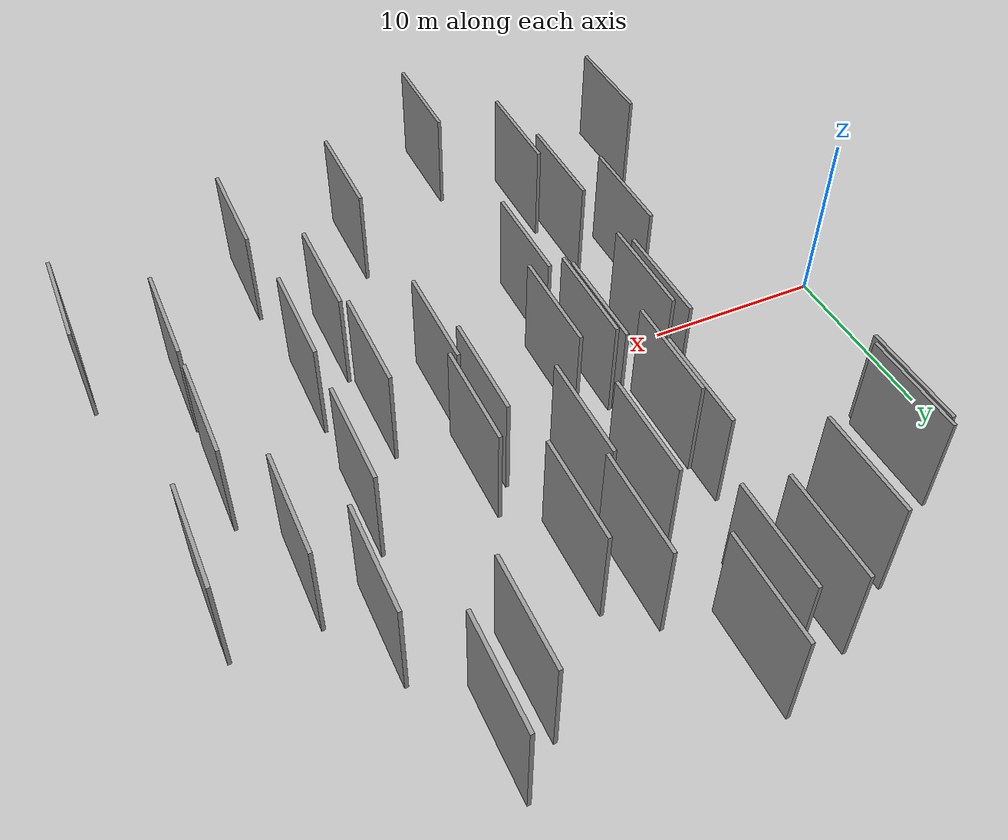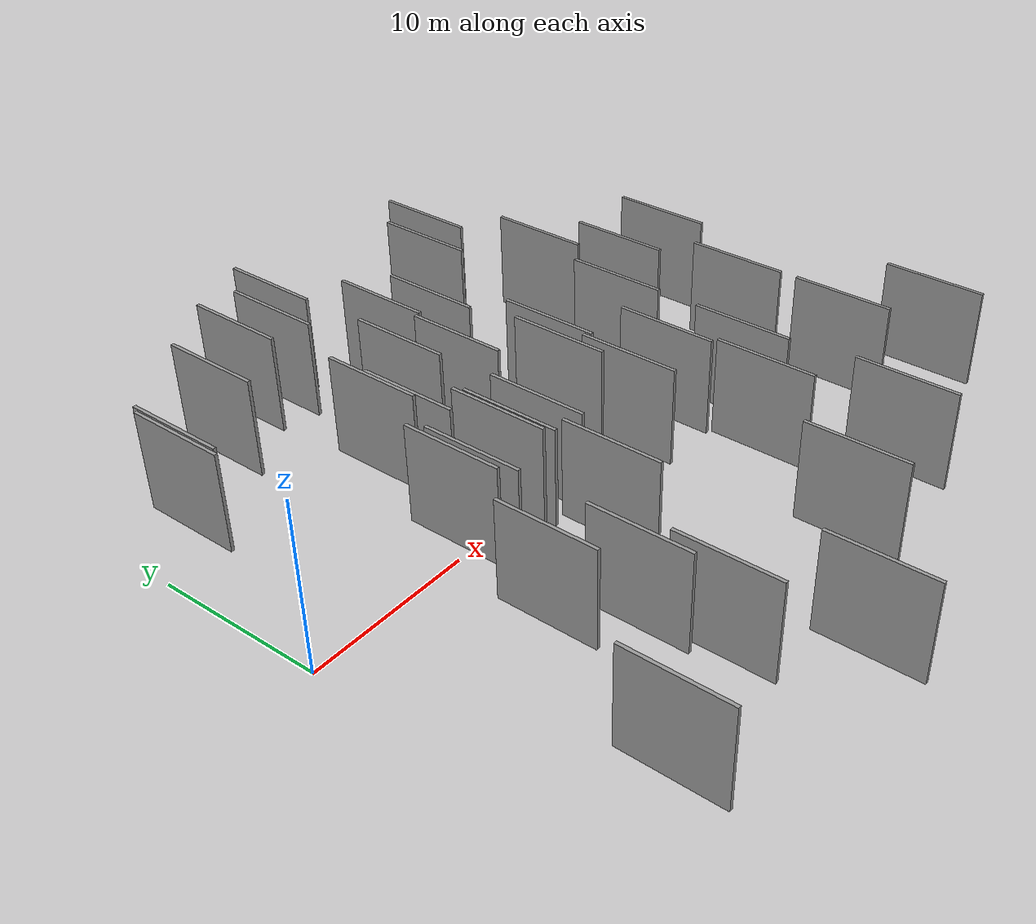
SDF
<sdf version="1.6">
 <world name="default">
  <scene>
   <sky><clouds><speed>12</speed></clouds></sky>
   <ambient>0.4 0.4 0.4 1</ambient>
   <background>0.7 0.7 0.7 1</background>
   <shadows>1</shadows>
  </scene>
  <gravity>0 0 -9.8066</gravity>
  <magnetic_field>6e-06 2.3e-05 -4.2e-05</magnetic_field>
  <physics default="0" name="default_physics" type="ode">
   <ode>
    <solver>
     <type>quick</type>
     <iters>10</iters>
     <sor>1.0</sor>
     <use_dynamic_moi_rescaling>0</use_dynamic_moi_rescaling>
    </solver>
    <constraints>
     <cfm>0</cfm>
     <erp>0.2</erp>
     <contact_max_correcting_vel>100</contact_max_correcting_vel>
     <contact_surface_layer>0.001</contact_surface_layer>
    </constraints>
   </ode>
   <max_step_size>0.004</max_step_size>
   <real_time_factor>1</real_time_factor>
   <real_time_update_rate>250</real_time_update_rate>
  </physics>
  <light name="sun" type="directional">
   <pose>0 0 10 0 0 0</pose>
   <diffuse>0.8 0.8 0.8 1</diffuse>
   <specular>0.2 0.2 0.2 1</specular>
   <attenuation>
    <range>1000</range>
    <constant>0.9</constant>
    <linear>0.01</linear>
    <quadratic>0.001</quadratic>
   </attenuation>
   <direction>-0.5 0.1 -0.9</direction>
  </light>
  <model name="grey_wall_1">
   <static>1</static>
   <pose>12.2431 -14.0350 0.0 0.000000 0.000000 1.570796</pose>
   <link name="link">
    <pose>0 0 3.00 0 0 0</pose>
    <collision name="collision"><geometry><box><size>6.00 0.2 6.00</size></box></geometry></collision>
    <visual name="visual">
     <cast_shadows>0</cast_shadows>
     <geometry><box><size>6.00 0.2 6.00</size></box></geometry>
     <material>
      <script>
       <uri>model://grey_wall/materials/scripts</uri>
       <uri>model://grey_wall/materials/textures</uri>
       <name>vrc/grey_wall</name>
      </script>
     </material>
    </visual>
   </link>
  </model>
  <model name="grey_wall_2">
   <static>1</static>
   <pose>27.0997 -6.8544 0.0 0.000000 0.000000 1.570796</pose>
   <link name="link">
    <pose>0 0 3.00 0 0 0</pose>
    <collision name="collision"><geometry><box><size>6.00 0.2 6.00</size></box></geometry></collision>
    <visual name="visual">
     <cast_shadows>0</cast_shadows>
     <geometry><box><size>6.00 0.2 6.00</size></box></geometry>
     <material>
      <script>
       <uri>model://grey_wall/materials/scripts</uri>
       <uri>model://grey_wall/materials/textures</uri>
       <name>vrc/grey_wall</name>
      </script>
     </material>
    </visual>
   </link>
  </model>
  <model name="grey_wall_3">
   <static>1</static>
   <pose>31.1081 11.6562 0.0 0.000000 0.000000 1.570796</pose>
   <link name="link">
    <pose>0 0 3.00 0 0 0</pose>
    <collision name="collision"><geometry><box><size>6.00 0.2 6.00</size></box></geometry></collision>
    <visual name="visual">
     <cast_shadows>0</cast_shadows>
     <geometry><box><size>6.00 0.2 6.00</size></box></geometry>
     <material>
      <script>
       <uri>model://grey_wall/materials/scripts</uri>
       <uri>model://grey_wall/materials/textures</uri>
       <name>vrc/grey_wall</name>
      </script>
     </material>
    </visual>
   </link>
  </model>
  <model name="grey_wall_4">
   <static>1</static>
   <pose>37.8687 7.3171 0.0 0.000000 0.000000 1.570796</pose>
   <link name="link">
    <pose>0 0 3.00 0 0 0</pose>
    <collision name="collision"><geometry><box><size>6.00 0.2 6.00</size></box></geometry></collision>
    <visual name="visual">
     <cast_shadows>0</cast_shadows>
     <geometry><box><size>6.00 0.2 6.00</size></box></geometry>
     <material>
      <script>
       <uri>model://grey_wall/materials/scripts</uri>
       <uri>model://grey_wall/materials/textures</uri>
       <name>vrc/grey_wall</name>
      </script>
     </material>
    </visual>
   </link>
  </model>
  <model name="grey_wall_5">
   <static>1</static>
   <pose>15.1503 0.8264 0.0 0.000000 0.000000 1.570796</pose>
   <link name="link">
    <pose>0 0 3.00 0 0 0</pose>
    <collision name="collision"><geometry><box><size>6.00 0.2 6.00</size></box></geometry></collision>
    <visual name="visual">
     <cast_shadows>0</cast_shadows>
     <geometry><box><size>6.00 0.2 6.00</size></box></geometry>
     <material>
      <script>
       <uri>model://grey_wall/materials/scripts</uri>
       <uri>model://grey_wall/materials/textures</uri>
       <name>vrc/grey_wall</name>
      </script>
     </material>
    </visual>
   </link>
  </model>
  <model name="grey_wall_6">
   <static>1</static>
   <pose>26.7278 -0.7350 0.0 0.000000 0.000000 1.570796</pose>
   <link name="link">
    <pose>0 0 3.00 0 0 0</pose>
    <collision name="collision"><geometry><box><size>6.00 0.2 6.00</size></box></geometry></collision>
    <visual name="visual">
     <cast_shadows>0</cast_shadows>
     <geometry><box><size>6.00 0.2 6.00</size></box></geometry>
     <material>
      <script>
       <uri>model://grey_wall/materials/scripts</uri>
       <uri>model://grey_wall/materials/textures</uri>
       <name>vrc/grey_wall</name>
      </script>
     </material>
    </visual>
   </link>
  </model>
  <model name="grey_wall_7">
   <static>1</static>
   <pose>9.1237 -6.3255 0.0 0.000000 0.000000 1.570796</pose>
   <link name="link">
    <pose>0 0 3.00 0 0 0</pose>
    <collision name="collision"><geometry><box><size>6.00 0.2 6.00</size></box></geometry></collision>
    <visual name="visual">
     <cast_shadows>0</cast_shadows>
     <geometry><box><size>6.00 0.2 6.00</size></box></geometry>
     <material>
      <script>
       <uri>model://grey_wall/materials/scripts</uri>
       <uri>model://grey_wall/materials/textures</uri>
       <name>vrc/grey_wall</name>
      </script>
     </material>
    </visual>
   </link>
  </model>
  <model name="grey_wall_8">
   <static>1</static>
   <pose>40.1917 -10.1299 0.0 0.000000 0.000000 1.570796</pose>
   <link name="link">
    <pose>0 0 3.00 0 0 0</pose>
    <collision name="collision"><geometry><box><size>6.00 0.2 6.00</size></box></geometry></collision>
    <visual name="visual">
     <cast_shadows>0</cast_shadows>
     <geometry><box><size>6.00 0.2 6.00</size></box></geometry>
     <material>
      <script>
       <uri>model://grey_wall/materials/scripts</uri>
       <uri>model://grey_wall/materials/textures</uri>
       <name>vrc/grey_wall</name>
      </script>
     </material>
    </visual>
   </link>
  </model>
  <model name="grey_wall_9">
   <static>1</static>
   <pose>11.0184 1.0518 0.0 0.000000 0.000000 1.570796</pose>
   <link name="link">
    <pose>0 0 3.00 0 0 0</pose>
    <collision name="collision"><geometry><box><size>6.00 0.2 6.00</size></box></geometry></collision>
    <visual name="visual">
     <cast_shadows>0</cast_shadows>
     <geometry><box><size>6.00 0.2 6.00</size></box></geometry>
     <material>
      <script>
       <uri>model://grey_wall/materials/scripts</uri>
       <uri>model://grey_wall/materials/textures</uri>
       <name>vrc/grey_wall</name>
      </script>
     </material>
    </visual>
   </link>
  </model>
  <model name="grey_wall_10">
   <static>1</static>
   <pose>19.4521 13.7732 0.0 0.000000 0.000000 1.570796</pose>
   <link name="link">
    <pose>0 0 3.00 0 0 0</pose>
    <collision name="collision"><geometry><box><size>6.00 0.2 6.00</size></box></geometry></collision>
    <visual name="visual">
     <cast_shadows>0</cast_shadows>
     <geometry><box><size>6.00 0.2 6.00</size></box></geometry>
     <material>
      <script>
       <uri>model://grey_wall/materials/scripts</uri>
       <uri>model://grey_wall/materials/textures</uri>
       <name>vrc/grey_wall</name>
      </script>
     </material>
    </visual>
   </link>
  </model>
  <model name="grey_wall_11">
   <static>1</static>
   <pose>33.4874 7.4057 0.0 0.000000 0.000000 1.570796</pose>
   <link name="link">
    <pose>0 0 3.00 0 0 0</pose>
    <collision name="collision"><geometry><box><size>6.00 0.2 6.00</size></box></geometry></collision>
    <visual name="visual">
     <cast_shadows>0</cast_shadows>
     <geometry><box><size>6.00 0.2 6.00</size></box></geometry>
     <material>
      <script>
       <uri>model://grey_wall/materials/scripts</uri>
       <uri>model://grey_wall/materials/textures</uri>
       <name>vrc/grey_wall</name>
      </script>
     </material>
    </visual>
   </link>
  </model>
  <model name="grey_wall_12">
   <static>1</static>
   <pose>16.3229 -19.4222 0.0 0.000000 0.000000 1.570796</pose>
   <link name="link">
    <pose>0 0 3.00 0 0 0</pose>
    <collision name="collision"><geometry><box><size>6.00 0.2 6.00</size></box></geometry></collision>
    <visual name="visual">
     <cast_shadows>0</cast_shadows>
     <geometry><box><size>6.00 0.2 6.00</size></box></geometry>
     <material>
      <script>
       <uri>model://grey_wall/materials/scripts</uri>
       <uri>model://grey_wall/materials/textures</uri>
       <name>vrc/grey_wall</name>
      </script>
     </material>
    </visual>
   </link>
  </model>
  <model name="grey_wall_13">
   <static>1</static>
   <pose>16.9138 9.9821 0.0 0.000000 0.000000 1.570796</pose>
   <link name="link">
    <pose>0 0 3.00 0 0 0</pose>
    <collision name="collision"><geometry><box><size>6.00 0.2 6.00</size></box></geometry></collision>
    <visual name="visual">
     <cast_shadows>0</cast_shadows>
     <geometry><box><size>6.00 0.2 6.00</size></box></geometry>
     <material>
      <script>
       <uri>model://grey_wall/materials/scripts</uri>
       <uri>model://grey_wall/materials/textures</uri>
       <name>vrc/grey_wall</name>
      </script>
     </material>
    </visual>
   </link>
  </model>
  <model name="grey_wall_14">
   <static>1</static>
   <pose>12.5975 18.2146 0.0 0.000000 0.000000 1.570796</pose>
   <link name="link">
    <pose>0 0 3.00 0 0 0</pose>
    <collision name="collision"><geometry><box><size>6.00 0.2 6.00</size></box></geometry></collision>
    <visual name="visual">
     <cast_shadows>0</cast_shadows>
     <geometry><box><size>6.00 0.2 6.00</size></box></geometry>
     <material>
      <script>
       <uri>model://grey_wall/materials/scripts</uri>
       <uri>model://grey_wall/materials/textures</uri>
       <name>vrc/grey_wall</name>
      </script>
     </material>
    </visual>
   </link>
  </model>
  <model name="grey_wall_15">
   <static>1</static>
   <pose>3.6692 12.4958 0.0 0.000000 0.000000 1.570796</pose>
   <link name="link">
    <pose>0 0 3.00 0 0 0</pose>
    <collision name="collision"><geometry><box><size>6.00 0.2 6.00</size></box></geometry></collision>
    <visual name="visual">
     <cast_shadows>0</cast_shadows>
     <geometry><box><size>6.00 0.2 6.00</size></box></geometry>
     <material>
      <script>
       <uri>model://grey_wall/materials/scripts</uri>
       <uri>model://grey_wall/materials/textures</uri>
       <name>vrc/grey_wall</name>
      </script>
     </material>
    </visual>
   </link>
  </model>
  <model name="grey_wall_16">
   <static>1</static>
   <pose>11.4764 -9.8431 0.0 0.000000 0.000000 1.570796</pose>
   <link name="link">
    <pose>0 0 3.00 0 0 0</pose>
    <collision name="collision"><geometry><box><size>6.00 0.2 6.00</size></box></geometry></collision>
    <visual name="visual">
     <cast_shadows>0</cast_shadows>
     <geometry><box><size>6.00 0.2 6.00</size></box></geometry>
     <material>
      <script>
       <uri>model://grey_wall/materials/scripts</uri>
       <uri>model://grey_wall/materials/textures</uri>
       <name>vrc/grey_wall</name>
      </script>
     </material>
    </visual>
   </link>
  </model>
  <model name="grey_wall_17">
   <static>1</static>
   <pose>22.3352 3.3064 0.0 0.000000 0.000000 1.570796</pose>
   <link name="link">
    <pose>0 0 3.00 0 0 0</pose>
    <collision name="collision"><geometry><box><size>6.00 0.2 6.00</size></box></geometry></collision>
    <visual name="visual">
     <cast_shadows>0</cast_shadows>
     <geometry><box><size>6.00 0.2 6.00</size></box></geometry>
     <material>
      <script>
       <uri>model://grey_wall/materials/scripts</uri>
       <uri>model://grey_wall/materials/textures</uri>
       <name>vrc/grey_wall</name>
      </script>
     </material>
    </visual>
   </link>
  </model>
  <model name="grey_wall_18">
   <static>1</static>
   <pose>28.5294 18.6801 0.0 0.000000 0.000000 1.570796</pose>
   <link name="link">
    <pose>0 0 3.00 0 0 0</pose>
    <collision name="collision"><geometry><box><size>6.00 0.2 6.00</size></box></geometry></collision>
    <visual name="visual">
     <cast_shadows>0</cast_shadows>
     <geometry><box><size>6.00 0.2 6.00</size></box></geometry>
     <material>
      <script>
       <uri>model://grey_wall/materials/scripts</uri>
       <uri>model://grey_wall/materials/textures</uri>
       <name>vrc/grey_wall</name>
      </script>
     </material>
    </visual>
   </link>
  </model>
  <model name="grey_wall_19">
   <static>1</static>
   <pose>23.4702 4.8727 0.0 0.000000 0.000000 1.570796</pose>
   <link name="link">
    <pose>0 0 3.00 0 0 0</pose>
    <collision name="collision"><geometry><box><size>6.00 0.2 6.00</size></box></geometry></collision>
    <visual name="visual">
     <cast_shadows>0</cast_shadows>
     <geometry><box><size>6.00 0.2 6.00</size></box></geometry>
     <material>
      <script>
       <uri>model://grey_wall/materials/scripts</uri>
       <uri>model://grey_wall/materials/textures</uri>
       <name>vrc/grey_wall</name>
      </script>
     </material>
    </visual>
   </link>
  </model>
  <model name="grey_wall_20">
   <static>1</static>
   <pose>29.5401 4.7031 0.0 0.000000 0.000000 1.570796</pose>
   <link name="link">
    <pose>0 0 3.00 0 0 0</pose>
    <collision name="collision"><geometry><box><size>6.00 0.2 6.00</size></box></geometry></collision>
    <visual name="visual">
     <cast_shadows>0</cast_shadows>
     <geometry><box><size>6.00 0.2 6.00</size></box></geometry>
     <material>
      <script>
       <uri>model://grey_wall/materials/scripts</uri>
       <uri>model://grey_wall/materials/textures</uri>
       <name>vrc/grey_wall</name>
      </script>
     </material>
    </visual>
   </link>
  </model>
  <model name="grey_wall_21">
   <static>1</static>
   <pose>19.0841 7.7829 0.0 0.000000 0.000000 1.570796</pose>
   <link name="link">
    <pose>0 0 3.00 0 0 0</pose>
    <collision name="collision"><geometry><box><size>6.00 0.2 6.00</size></box></geometry></collision>
    <visual name="visual">
     <cast_shadows>0</cast_shadows>
     <geometry><box><size>6.00 0.2 6.00</size></box></geometry>
     <material>
      <script>
       <uri>model://grey_wall/materials/scripts</uri>
       <uri>model://grey_wall/materials/textures</uri>
       <name>vrc/grey_wall</name>
      </script>
     </material>
    </visual>
   </link>
  </model>
  <model name="grey_wall_22">
   <static>1</static>
   <pose>16.1011 -4.8482 0.0 0.000000 0.000000 1.570796</pose>
   <link name="link">
    <pose>0 0 3.00 0 0 0</pose>
    <collision name="collision"><geometry><box><size>6.00 0.2 6.00</size></box></geometry></collision>
    <visual name="visual">
     <cast_shadows>0</cast_shadows>
     <geometry><box><size>6.00 0.2 6.00</size></box></geometry>
     <material>
      <script>
       <uri>model://grey_wall/materials/scripts</uri>
       <uri>model://grey_wall/materials/textures</uri>
       <name>vrc/grey_wall</name>
      </script>
     </material>
    </visual>
   </link>
  </model>
  <model name="grey_wall_23">
   <static>1</static>
   <pose>35.5361 0.2810 0.0 0.000000 0.000000 1.570796</pose>
   <link name="link">
    <pose>0 0 3.00 0 0 0</pose>
    <collision name="collision"><geometry><box><size>6.00 0.2 6.00</size></box></geometry></collision>
    <visual name="visual">
     <cast_shadows>0</cast_shadows>
     <geometry><box><size>6.00 0.2 6.00</size></box></geometry>
     <material>
      <script>
       <uri>model://grey_wall/materials/scripts</uri>
       <uri>model://grey_wall/materials/textures</uri>
       <name>vrc/grey_wall</name>
      </script>
     </material>
    </visual>
   </link>
  </model>
  <model name="grey_wall_24">
   <static>1</static>
   <pose>29.4471 -3.9167 0.0 0.000000 0.000000 1.570796</pose>
   <link name="link">
    <pose>0 0 3.00 0 0 0</pose>
    <collision name="collision"><geometry><box><size>6.00 0.2 6.00</size></box></geometry></collision>
    <visual name="visual">
     <cast_shadows>0</cast_shadows>
     <geometry><box><size>6.00 0.2 6.00</size></box></geometry>
     <material>
      <script>
       <uri>model://grey_wall/materials/scripts</uri>
       <uri>model://grey_wall/materials/textures</uri>
       <name>vrc/grey_wall</name>
      </script>
     </material>
    </visual>
   </link>
  </model>
  <model name="grey_wall_25">
   <static>1</static>
   <pose>11.5138 0.1690 0.0 0.000000 0.000000 1.570796</pose>
   <link name="link">
    <pose>0 0 3.00 0 0 0</pose>
    <collision name="collision"><geometry><box><size>6.00 0.2 6.00</size></box></geometry></collision>
    <visual name="visual">
     <cast_shadows>0</cast_shadows>
     <geometry><box><size>6.00 0.2 6.00</size></box></geometry>
     <material>
      <script>
       <uri>model://grey_wall/materials/scripts</uri>
       <uri>model://grey_wall/materials/textures</uri>
       <name>vrc/grey_wall</name>
      </script>
     </material>
    </visual>
   </link>
  </model>
  <model name="grey_wall_26">
   <static>1</static>
   <pose>23.2149 -14.4304 0.0 0.000000 0.000000 1.570796</pose>
   <link name="link">
    <pose>0 0 3.00 0 0 0</pose>
    <collision name="collision"><geometry><box><size>6.00 0.2 6.00</size></box></geometry></collision>
    <visual name="visual">
     <cast_shadows>0</cast_shadows>
     <geometry><box><size>6.00 0.2 6.00</size></box></geometry>
     <material>
      <script>
       <uri>model://grey_wall/materials/scripts</uri>
       <uri>model://grey_wall/materials/textures</uri>
       <name>vrc/grey_wall</name>
      </script>
     </material>
    </visual>
   </link>
  </model>
  <model name="grey_wall_27">
   <static>1</static>
   <pose>23.1146 -0.8007 0.0 0.000000 0.000000 1.570796</pose>
   <link name="link">
    <pose>0 0 3.00 0 0 0</pose>
    <collision name="collision"><geometry><box><size>6.00 0.2 6.00</size></box></geometry></collision>
    <visual name="visual">
     <cast_shadows>0</cast_shadows>
     <geometry><box><size>6.00 0.2 6.00</size></box></geometry>
     <material>
      <script>
       <uri>model://grey_wall/materials/scripts</uri>
       <uri>model://grey_wall/materials/textures</uri>
       <name>vrc/grey_wall</name>
      </script>
     </material>
    </visual>
   </link>
  </model>
  <model name="grey_wall_28">
   <static>1</static>
   <pose>4.8129 -16.3485 0.0 0.000000 0.000000 1.570796</pose>
   <link name="link">
    <pose>0 0 3.00 0 0 0</pose>
    <collision name="collision"><geometry><box><size>6.00 0.2 6.00</size></box></geometry></collision>
    <visual name="visual">
     <cast_shadows>0</cast_shadows>
     <geometry><box><size>6.00 0.2 6.00</size></box></geometry>
     <material>
      <script>
       <uri>model://grey_wall/materials/scripts</uri>
       <uri>model://grey_wall/materials/textures</uri>
       <name>vrc/grey_wall</name>
      </script>
     </material>
    </visual>
   </link>
  </model>
  <model name="grey_wall_29">
   <static>1</static>
   <pose>16.6911 19.8146 0.0 0.000000 0.000000 1.570796</pose>
   <link name="link">
    <pose>0 0 3.00 0 0 0</pose>
    <collision name="collision"><geometry><box><size>6.00 0.2 6.00</size></box></geometry></collision>
    <visual name="visual">
     <cast_shadows>0</cast_shadows>
     <geometry><box><size>6.00 0.2 6.00</size></box></geometry>
     <material>
      <script>
       <uri>model://grey_wall/materials/scripts</uri>
       <uri>model://grey_wall/materials/textures</uri>
       <name>vrc/grey_wall</name>
      </script>
     </material>
    </visual>
   </link>
  </model>
  <model name="grey_wall_30">
   <static>1</static>
   <pose>14.8732 1.3589 0.0 0.000000 0.000000 1.570796</pose>
   <link name="link">
    <pose>0 0 3.00 0 0 0</pose>
    <collision name="collision"><geometry><box><size>6.00 0.2 6.00</size></box></geometry></collision>
    <visual name="visual">
     <cast_shadows>0</cast_shadows>
     <geometry><box><size>6.00 0.2 6.00</size></box></geometry>
     <material>
      <script>
       <uri>model://grey_wall/materials/scripts</uri>
       <uri>model://grey_wall/materials/textures</uri>
       <name>vrc/grey_wall</name>
      </script>
     </material>
    </visual>
   </link>
  </model>
  <model name="grey_wall_31">
   <static>1</static>
   <pose>3.9712 12.9399 0.0 0.000000 0.000000 1.570796</pose>
   <link name="link">
    <pose>0 0 3.00 0 0 0</pose>
    <collision name="collision"><geometry><box><size>6.00 0.2 6.00</size></box></geometry></collision>
    <visual name="visual">
     <cast_shadows>0</cast_shadows>
     <geometry><box><size>6.00 0.2 6.00</size></box></geometry>
     <material>
      <script>
       <uri>model://grey_wall/materials/scripts</uri>
       <uri>model://grey_wall/materials/textures</uri>
       <name>vrc/grey_wall</name>
      </script>
     </material>
    </visual>
   </link>
  </model>
  <model name="grey_wall_32">
   <static>1</static>
   <pose>13.3617 6.0842 0.0 0.000000 0.000000 1.570796</pose>
   <link name="link">
    <pose>0 0 3.00 0 0 0</pose>
    <collision name="collision"><geometry><box><size>6.00 0.2 6.00</size></box></geometry></collision>
    <visual name="visual">
     <cast_shadows>0</cast_shadows>
     <geometry><box><size>6.00 0.2 6.00</size></box></geometry>
     <material>
      <script>
       <uri>model://grey_wall/materials/scripts</uri>
       <uri>model://grey_wall/materials/textures</uri>
       <name>vrc/grey_wall</name>
      </script>
     </material>
    </visual>
   </link>
  </model>
  <model name="grey_wall_33">
   <static>1</static>
   <pose>30.0432 -13.6138 0.0 0.000000 0.000000 1.570796</pose>
   <link name="link">
    <pose>0 0 3.00 0 0 0</pose>
    <collision name="collision"><geometry><box><size>6.00 0.2 6.00</size></box></geometry></collision>
    <visual name="visual">
     <cast_shadows>0</cast_shadows>
     <geometry><box><size>6.00 0.2 6.00</size></box></geometry>
     <material>
      <script>
       <uri>model://grey_wall/materials/scripts</uri>
       <uri>model://grey_wall/materials/textures</uri>
       <name>vrc/grey_wall</name>
      </script>
     </material>
    </visual>
   </link>
  </model>
  <model name="grey_wall_34">
   <static>1</static>
   <pose>35.5554 -6.7265 0.0 0.000000 0.000000 1.570796</pose>
   <link name="link">
    <pose>0 0 3.00 0 0 0</pose>
    <collision name="collision"><geometry><box><size>6.00 0.2 6.00</size></box></geometry></collision>
    <visual name="visual">
     <cast_shadows>0</cast_shadows>
     <geometry><box><size>6.00 0.2 6.00</size></box></geometry>
     <material>
      <script>
       <uri>model://grey_wall/materials/scripts</uri>
       <uri>model://grey_wall/materials/textures</uri>
       <name>vrc/grey_wall</name>
      </script>
     </material>
    </visual>
   </link>
  </model>
  <model name="grey_wall_35">
   <static>1</static>
   <pose>13.1601 8.4311 0.0 0.000000 0.000000 1.570796</pose>
   <link name="link">
    <pose>0 0 3.00 0 0 0</pose>
    <collision name="collision"><geometry><box><size>6.00 0.2 6.00</size></box></geometry></collision>
    <visual name="visual">
     <cast_shadows>0</cast_shadows>
     <geometry><box><size>6.00 0.2 6.00</size></box></geometry>
     <material>
      <script>
       <uri>model://grey_wall/materials/scripts</uri>
       <uri>model://grey_wall/materials/textures</uri>
       <name>vrc/grey_wall</name>
      </script>
     </material>
    </visual>
   </link>
  </model>
  <model name="grey_wall_36">
   <static>1</static>
   <pose>17.0728 0.6056 0.0 0.000000 0.000000 1.570796</pose>
   <link name="link">
    <pose>0 0 3.00 0 0 0</pose>
    <collision name="collision"><geometry><box><size>6.00 0.2 6.00</size></box></geometry></collision>
    <visual name="visual">
     <cast_shadows>0</cast_shadows>
     <geometry><box><size>6.00 0.2 6.00</size></box></geometry>
     <material>
      <script>
       <uri>model://grey_wall/materials/scripts</uri>
       <uri>model://grey_wall/materials/textures</uri>
       <name>vrc/grey_wall</name>
      </script>
     </material>
    </visual>
   </link>
  </model>
  <model name="grey_wall_37">
   <static>1</static>
   <pose>21.5807 11.9517 0.0 0.000000 0.000000 1.570796</pose>
   <link name="link">
    <pose>0 0 3.00 0 0 0</pose>
    <collision name="collision"><geometry><box><size>6.00 0.2 6.00</size></box></geometry></collision>
    <visual name="visual">
     <cast_shadows>0</cast_shadows>
     <geometry><box><size>6.00 0.2 6.00</size></box></geometry>
     <material>
      <script>
       <uri>model://grey_wall/materials/scripts</uri>
       <uri>model://grey_wall/materials/textures</uri>
       <name>vrc/grey_wall</name>
      </script>
     </material>
    </visual>
   </link>
  </model>
  <model name="grey_wall_38">
   <static>1</static>
   <pose>26.3433 16.7134 0.0 0.000000 0.000000 1.570796</pose>
   <link name="link">
    <pose>0 0 3.00 0 0 0</pose>
    <collision name="collision"><geometry><box><size>6.00 0.2 6.00</size></box></geometry></collision>
    <visual name="visual">
     <cast_shadows>0</cast_shadows>
     <geometry><box><size>6.00 0.2 6.00</size></box></geometry>
     <material>
      <script>
       <uri>model://grey_wall/materials/scripts</uri>
       <uri>model://grey_wall/materials/textures</uri>
       <name>vrc/grey_wall</name>
      </script>
     </material>
    </visual>
   </link>
  </model>
  <model name="grey_wall_39">
   <static>1</static>
   <pose>8.9888 16.0603 0.0 0.000000 0.000000 1.570796</pose>
   <link name="link">
    <pose>0 0 3.00 0 0 0</pose>
    <collision name="collision"><geometry><box><size>6.00 0.2 6.00</size></box></geometry></collision>
    <visual name="visual">
     <cast_shadows>0</cast_shadows>
     <geometry><box><size>6.00 0.2 6.00</size></box></geometry>
     <material>
      <script>
       <uri>model://grey_wall/materials/scripts</uri>
       <uri>model://grey_wall/materials/textures</uri>
       <name>vrc/grey_wall</name>
      </script>
     </material>
    </visual>
   </link>
  </model>
  <model name="grey_wall_40">
   <static>1</static>
   <pose>14.8801 17.7474 0.0 0.000000 0.000000 1.570796</pose>
   <link name="link">
    <pose>0 0 3.00 0 0 0</pose>
    <collision name="collision"><geometry><box><size>6.00 0.2 6.00</size></box></geometry></collision>
    <visual name="visual">
     <cast_shadows>0</cast_shadows>
     <geometry><box><size>6.00 0.2 6.00</size></box></geometry>
     <material>
      <script>
       <uri>model://grey_wall/materials/scripts</uri>
       <uri>model://grey_wall/materials/textures</uri>
       <name>vrc/grey_wall</name>
      </script>
     </material>
    </visual>
   </link>
  </model>
 </world>
</sdf>
